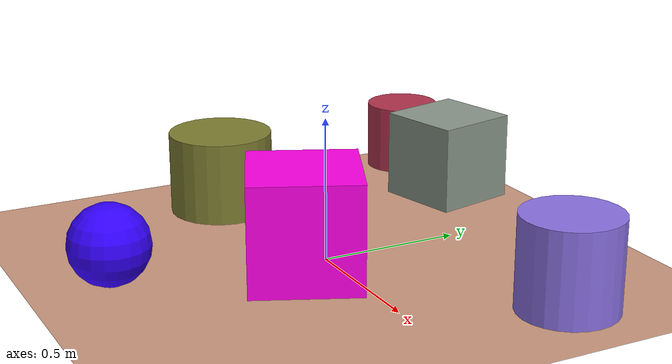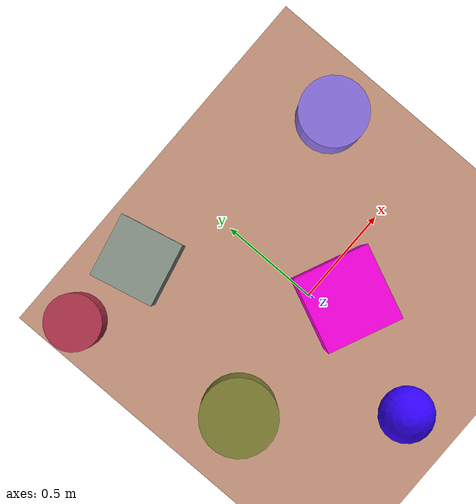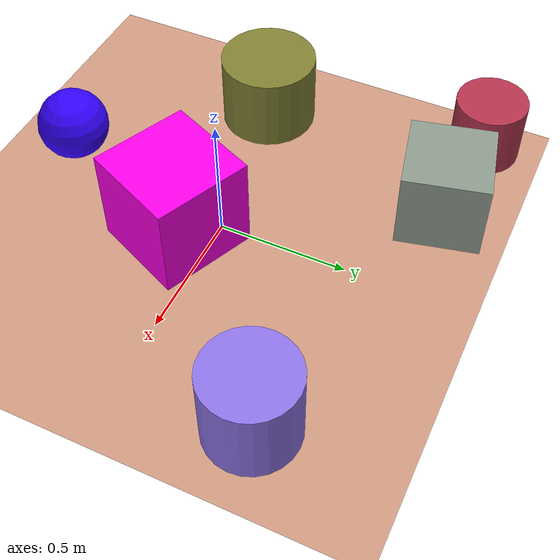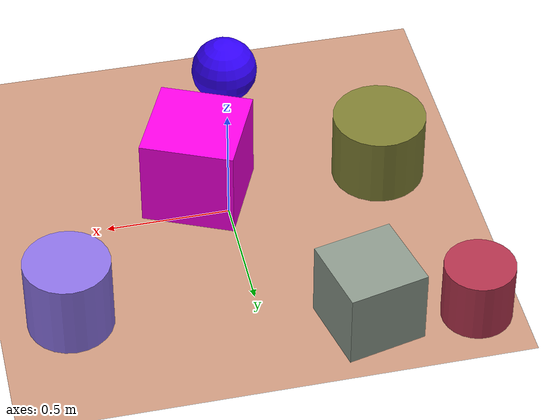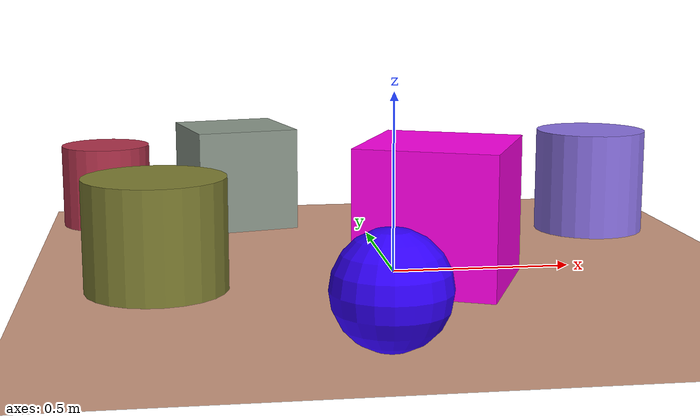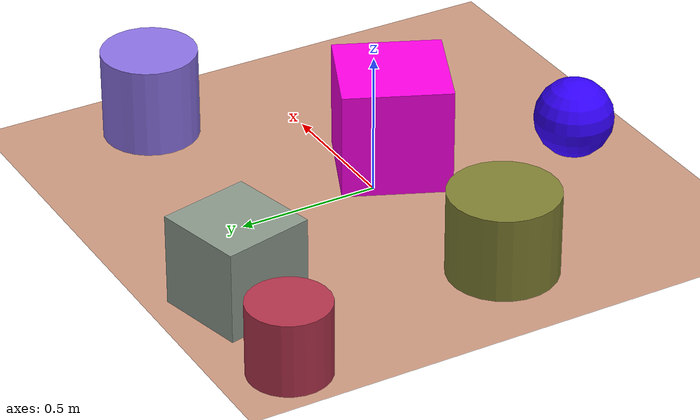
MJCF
<mujoco>
   <asset>
<texture type="skybox" builtin="gradient" rgb1="0.5 0.8 0.7" rgb2="0.1 0.4 0.1" width="500" height="500"/>
<texture name="flat_0" builtin="flat" rgb1="0.7 0.2 0.3" rgb2="0.7 0.2 0.3"  width="500" height="500"/>
<texture name="gradient_1" builtin="gradient" rgb1="1.0 0.8 0.0" rgb2="0.0 0.2 0.4" width="500" height="500"/>
<texture name="gradient_2" builtin="gradient" rgb1="0.3 0.1 0.8" rgb2="0.8 0.8 1.0" width="500" height="500"/>
<texture name="flat_3" builtin="flat" rgb1="0.2 0.0 1.0" rgb2="0.2 0.0 1.0"  width="500" height="500"/>
<texture name="flat_4" builtin="flat" rgb1="1.0 0.0 0.9" rgb2="1.0 0.0 0.9"  width="500" height="500"/>
<texture name="checker_5" builtin="checker" rgb1="0.4 0.7 0.8" rgb2="0.7 0.5 0.3" width="500" height="500"/><material name="flat_0_mat" reflectance="0.45953708537016147" texture="flat_0" texuniform="true"/>
<material name="gradient_1_mat" reflectance="0.030984681390994084" texture="gradient_1" texuniform="true"/>
<material name="gradient_2_mat" reflectance="0.4646563294881122" texture="gradient_2" texuniform="true"/>
<material name="flat_3_mat" reflectance="0.9842837997498393" texture="flat_3" texuniform="true"/>
<material name="flat_4_mat" reflectance="0.9927460240111805" texture="flat_4" texuniform="true"/>
<material name="checker_5_mat" reflectance="0.5576353092801952" texrepeat="8 8" texture="checker_5" texuniform="false" />
   </asset>

   <worldbody>
     <geom type="plane" size="1 1 0.1" rgba="0.8 0.6 0.5 1" />
<light pos="-0.0647308456768978 -0.4042066602515044 2" dir="0 0 -1" cutoff="90" diffuse="1 1 1" specular="1 1 1"/>
<light pos="-0.7366140207586223 -0.8718382286732356 2" dir="0 0 -1" cutoff="90" diffuse="1 1 1" specular="1 1 1"/>
<geom type="cylinder" pos="-0.82 0.77 0.13" size="0.14 0.13 0.13" material="flat_0_mat" euler="0 0 22" />
<geom type="cylinder" pos="-0.65 -0.11 0.15" size="0.19 0.15 0.15" material="gradient_1_mat" euler="0 0 52" />
<geom type="cylinder" pos="0.72 0.48 0.16" size="0.17 0.16 0.16" material="gradient_2_mat" euler="0 0 89" />
<geom type="sphere" pos="-0.13 -0.72 0.14" size="0.14 0.14 0.14" material="flat_3_mat" euler="0 0 65" />
<geom type="box" pos="0.1 -0.13 0.19" size="0.19 0.19 0.19" material="flat_4_mat" euler="0 0 66" />
<geom type="box" pos="-0.4 0.73 0.16" size="0.16 0.16 0.16" material="checker_5_mat" euler="0 0 13" /><camera euler="60 0 180" fovy="60" name="camera1" pos="-0.2 -1.5 1"></camera>   </worldbody>
   <visual>
      <headlight diffuse="0.7 0.7 0.7"/>
   </visual>
</mujoco>
